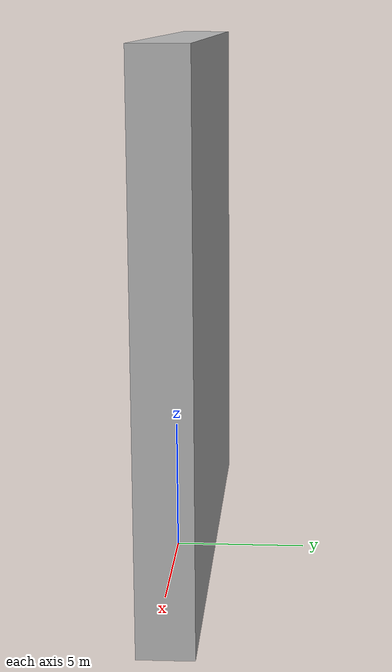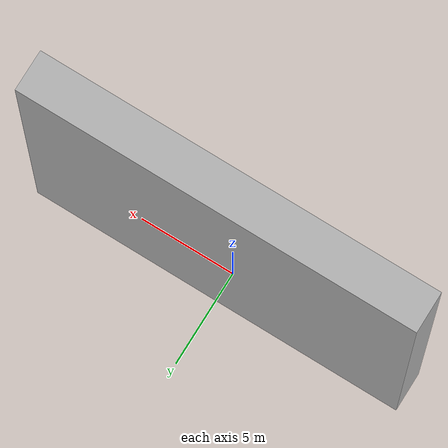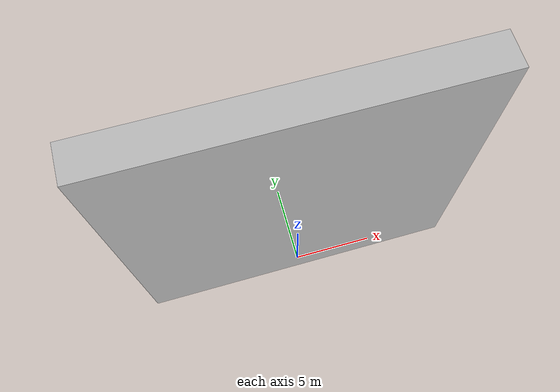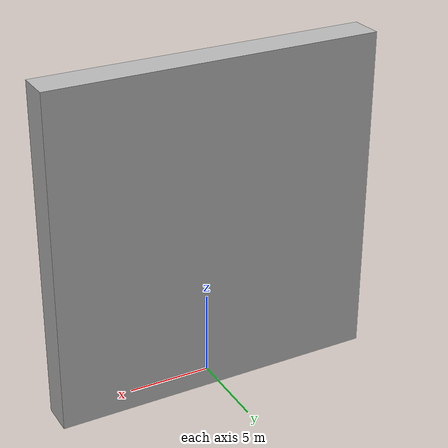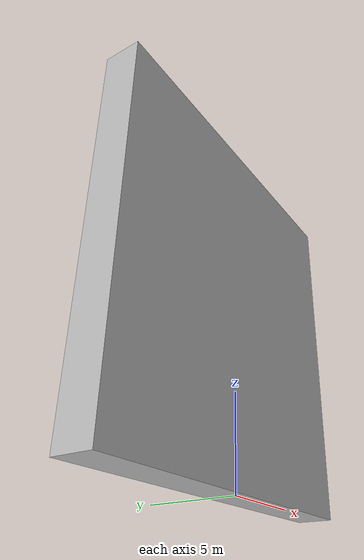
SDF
<?xml version="1.0" ?>
<sdf version="1.5">
    <model name="Parede Lisa">
        <static>true</static>
        <link name="link">
            <pose>0 0 0 0 0 0</pose>
            <collision name="collision">
                <geometry>
                    <mesh>
                        <uri>model://parede_lisa/parede_lisa.dae</uri>
                    </mesh>
                </geometry>
            </collision>
            <visual name="visual">
                <geometry>
                    <mesh>
                        <uri>model://parede_lisa/parede_lisa.dae</uri>
                    </mesh>
                </geometry>
                <material>
                    <script>
                        <uri> model://parede_lisa</uri>
                    </script>
                </material>
                <surface>
                    <contact>
                        <collide_bitmask>0xffff</collide_bitmask>
                    </contact>
                </surface>
            </visual>
        </link>
    </model>
</sdf>
